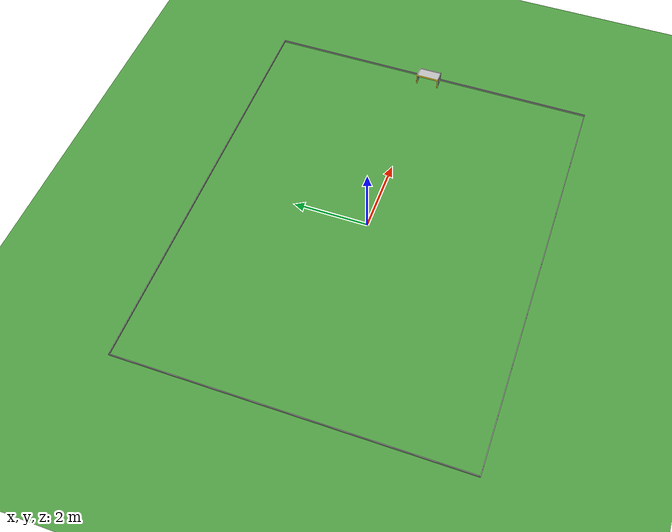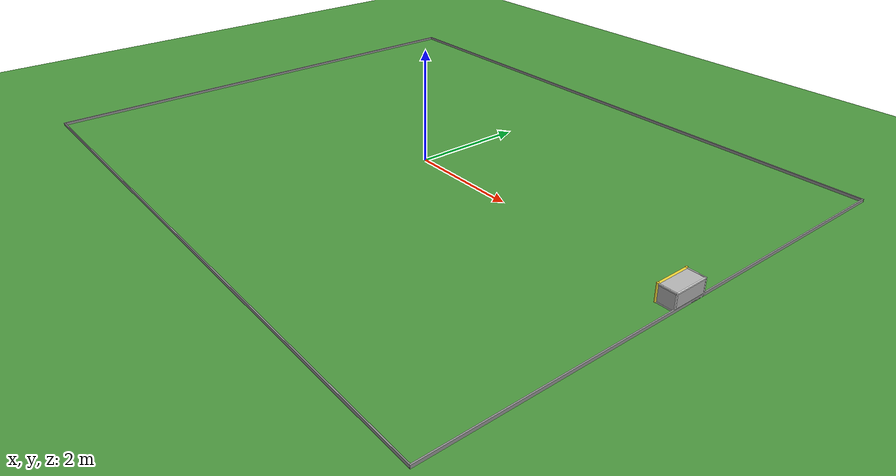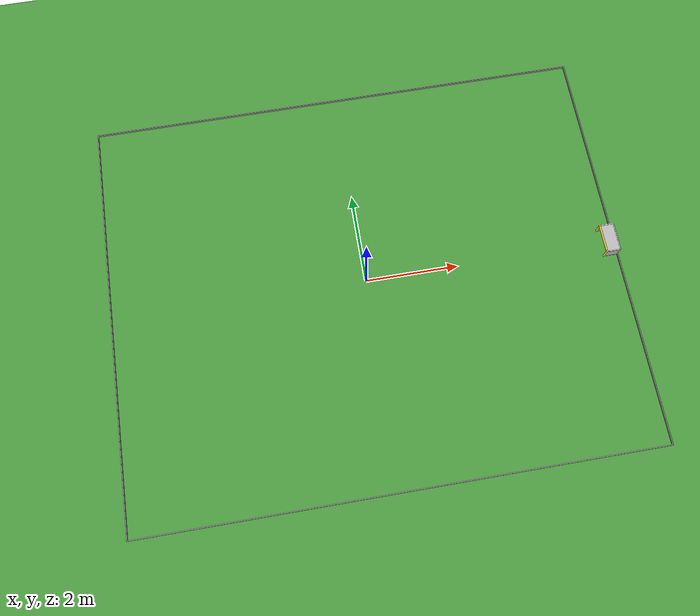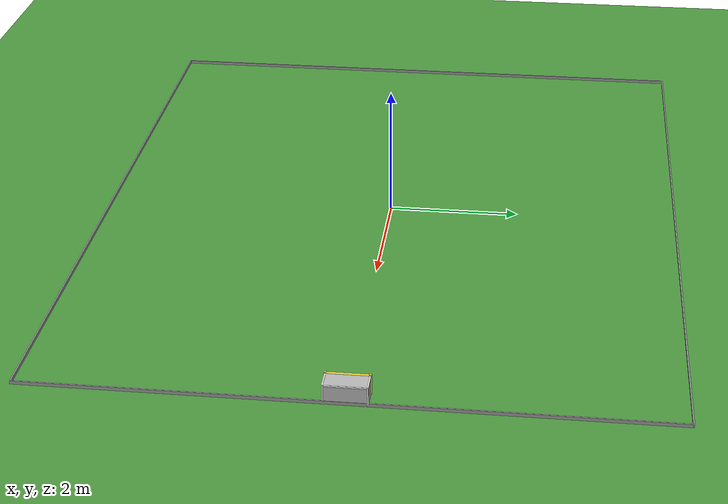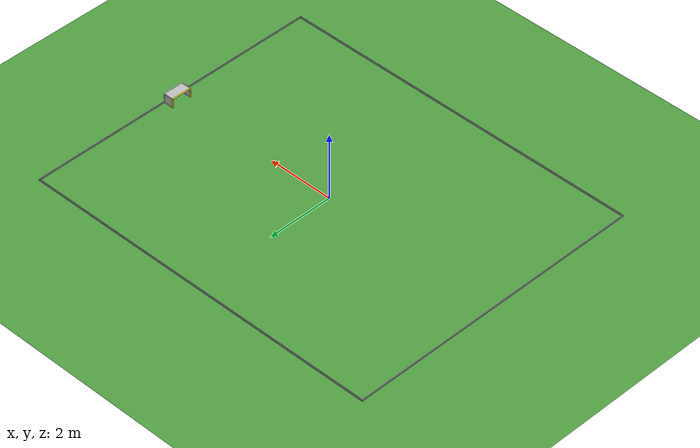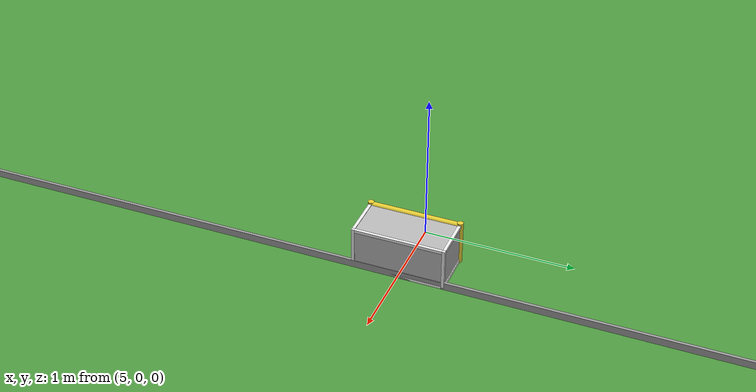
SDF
<?xml version="1.0"?>
<sdf version='1.6'>
  <world name='vsss_environment'>

    <!-- Fonte de luz -->
    <light name='sun' type='directional'>
      <cast_shadows>0</cast_shadows>
      <pose frame=''>0 0 10 0 -0 0</pose>
      <diffuse>0.8 0.8 0.8 1</diffuse>
      <specular>0.2 0.2 0.2 1</specular>

      <attenuation>
        <range>1000</range>
        <constant>0.9</constant>
        <linear>0.01</linear>
        <quadratic>0.001</quadratic>
      </attenuation>

      <direction>-0.5 0.1 -0.9</direction>
    </light>

    <!-- Interface -->
    <gui fullscreen='0'>
      <camera name='user_camera'>
        <pose frame=''>0 -0.2 2.5 0 1.50 1.57</pose>
        <view_controller>orbit</view_controller>
        <projection_type>perspective</projection_type>
      </camera>
    </gui>

    <!-- Terreno plano -->
    <model name='ground_plane'>
      <static>1</static>
      <link name='link'>
        <collision name='collision'>
          <geometry>
            <plane>
              <normal>0 0 1</normal>
              <size>11 9</size>
            </plane>
          </geometry>
          <surface>
            <friction>
              <ode>
                <mu>0.5</mu>
                <mu2>0.5</mu2>
              </ode>
              <torsional>
                <ode/>
              </torsional>
            </friction>
            <contact>
              <ode/>
            </contact>
            <bounce/>
          </surface>
          <max_contacts>10</max_contacts>
        </collision>
        <visual name='visual'>
          <cast_shadows>0</cast_shadows>
          <geometry>
            <plane>
              <normal>0 0 1</normal>
              <size>11 9</size>
            </plane>
          </geometry>
          <material>
            <script>
              <uri>model://robocup_3Dsim_field/materials/scripts/</uri>
              <uri>model://robocup_3Dsim_field/materials/textures/</uri>
              <name>RoboCup/Grass</name>
            </script>
          </material>
        </visual>
        <self_collide>0</self_collide>
        <enable_wind>0</enable_wind>
        <kinematic>0</kinematic>
      </link>
    </model>

    <gravity>0 0 -9.8</gravity>
    <magnetic_field>6e-06 2.3e-05 -4.2e-05</magnetic_field>
    <atmosphere type='adiabatic'/>

    <physics name='default_physics' default='0' type='ode'>
      <max_step_size>0.001</max_step_size>
      <real_time_factor>1</real_time_factor>
      <real_time_update_rate>1000</real_time_update_rate>
    </physics>

    <scene>
      <ambient>0.4 0.4 0.4 1</ambient>
      <background>0.7 0.7 0.7 1</background>
      <shadows>0</shadows>
    </scene>

    <spherical_coordinates>
      <surface_model>EARTH_WGS84</surface_model>
      <latitude_deg>0</latitude_deg>
      <longitude_deg>0</longitude_deg>
      <elevation>0</elevation>
      <heading_deg>0</heading_deg>
    </spherical_coordinates>
    <model name='robocup_3d_goal'>
      <static>1</static>
      <link name='left_post'>
        <pose frame=''>0 0.3 0.15 0 -0 0</pose>
        <collision name='collision'>
          <geometry>
            <cylinder>
              <radius>0.02</radius>
              <length>0.3</length>
            </cylinder>
          </geometry>
          <max_contacts>10</max_contacts>
          <surface>
            <contact>
              <ode/>
            </contact>
            <bounce/>
            <friction>
              <torsional>
                <ode/>
              </torsional>
              <ode/>
            </friction>
          </surface>
        </collision>
        <visual name='visual'>
          <geometry>
            <cylinder>
              <radius>0.02</radius>
              <length>0.3</length>
            </cylinder>
          </geometry>
          <material>
            <script>
              <uri>file://media/materials/scripts/gazebo.material</uri>
              <name>Gazebo/ZincYellow</name>
            </script>
          </material>
        </visual>
        <self_collide>0</self_collide>
        <kinematic>0</kinematic>
        <gravity>1</gravity>
      </link>
      <link name='left_support_horiz_lower'>
        <pose frame=''>0.15 0.3 0.01 0 -0 0</pose>
        <collision name='collision'>
          <geometry>
            <box>
              <size>0.3 0.02 0.02</size>
            </box>
          </geometry>
          <max_contacts>10</max_contacts>
          <surface>
            <contact>
              <ode/>
            </contact>
            <bounce/>
            <friction>
              <torsional>
                <ode/>
              </torsional>
              <ode/>
            </friction>
          </surface>
        </collision>
        <visual name='visual'>
          <geometry>
            <box>
              <size>0.3 0.02 0.02</size>
            </box>
          </geometry>
          <material>
            <script>
              <uri>file://media/materials/scripts/gazebo.material</uri>
              <name>Gazebo/White</name>
            </script>
          </material>
        </visual>
        <self_collide>0</self_collide>
        <kinematic>0</kinematic>
        <gravity>1</gravity>
      </link>
      <link name='left_support_horiz_upper'>
        <pose frame=''>0.15 0.3 0.28 0 -0 0</pose>
        <collision name='collision'>
          <geometry>
            <box>
              <size>0.3 0.02 0.02</size>
            </box>
          </geometry>
          <max_contacts>10</max_contacts>
          <surface>
            <contact>
              <ode/>
            </contact>
            <bounce/>
            <friction>
              <torsional>
                <ode/>
              </torsional>
              <ode/>
            </friction>
          </surface>
        </collision>
        <visual name='visual'>
          <geometry>
            <box>
              <size>0.3 0.02 0.02</size>
            </box>
          </geometry>
          <material>
            <script>
              <uri>file://media/materials/scripts/gazebo.material</uri>
              <name>Gazebo/White</name>
            </script>
          </material>
        </visual>
        <self_collide>0</self_collide>
        <kinematic>0</kinematic>
        <gravity>1</gravity>
      </link>
      <link name='left_support_vertical'>
        <pose frame=''>0.3 0.3 0.15 3.14159 1.57079 3.14159</pose>
        <collision name='collision'>
          <geometry>
            <box>
              <size>0.28 0.02 0.02</size>
            </box>
          </geometry>
          <max_contacts>10</max_contacts>
          <surface>
            <contact>
              <ode/>
            </contact>
            <bounce/>
            <friction>
              <torsional>
                <ode/>
              </torsional>
              <ode/>
            </friction>
          </surface>
        </collision>
        <visual name='visual'>
          <geometry>
            <box>
              <size>0.28 0.02 0.02</size>
            </box>
          </geometry>
          <material>
            <script>
              <uri>file://media/materials/scripts/gazebo.material</uri>
              <name>Gazebo/White</name>
            </script>
          </material>
        </visual>
        <self_collide>0</self_collide>
        <kinematic>0</kinematic>
        <gravity>1</gravity>
      </link>
      <link name='right_support_horiz_lower'>
        <pose frame=''>0.15 -0.3 0.01 0 -0 0</pose>
        <collision name='collision'>
          <geometry>
            <box>
              <size>0.3 0.02 0.02</size>
            </box>
          </geometry>
          <max_contacts>10</max_contacts>
          <surface>
            <contact>
              <ode/>
            </contact>
            <bounce/>
            <friction>
              <torsional>
                <ode/>
              </torsional>
              <ode/>
            </friction>
          </surface>
        </collision>
        <visual name='visual'>
          <geometry>
            <box>
              <size>0.3 0.02 0.02</size>
            </box>
          </geometry>
          <material>
            <script>
              <uri>file://media/materials/scripts/gazebo.material</uri>
              <name>Gazebo/White</name>
            </script>
          </material>
        </visual>
        <self_collide>0</self_collide>
        <kinematic>0</kinematic>
        <gravity>1</gravity>
      </link>
      <link name='right_support_horiz_upper'>
        <pose frame=''>0.15 -0.3 0.28 0 -0 0</pose>
        <collision name='collision'>
          <geometry>
            <box>
              <size>0.3 0.02 0.02</size>
            </box>
          </geometry>
          <max_contacts>10</max_contacts>
          <surface>
            <contact>
              <ode/>
            </contact>
            <bounce/>
            <friction>
              <torsional>
                <ode/>
              </torsional>
              <ode/>
            </friction>
          </surface>
        </collision>
        <visual name='visual'>
          <geometry>
            <box>
              <size>0.3 0.02 0.02</size>
            </box>
          </geometry>
          <material>
            <script>
              <uri>file://media/materials/scripts/gazebo.material</uri>
              <name>Gazebo/White</name>
            </script>
          </material>
        </visual>
        <self_collide>0</self_collide>
        <kinematic>0</kinematic>
        <gravity>1</gravity>
      </link>
      <link name='right_support_vertical'>
        <pose frame=''>0.3 -0.3 0.15 3.14159 1.57079 3.14159</pose>
        <collision name='collision'>
          <geometry>
            <box>
              <size>0.28 0.02 0.02</size>
            </box>
          </geometry>
          <max_contacts>10</max_contacts>
          <surface>
            <contact>
              <ode/>
            </contact>
            <bounce/>
            <friction>
              <torsional>
                <ode/>
              </torsional>
              <ode/>
            </friction>
          </surface>
        </collision>
        <visual name='visual'>
          <geometry>
            <box>
              <size>0.28 0.02 0.02</size>
            </box>
          </geometry>
          <material>
            <script>
              <uri>file://media/materials/scripts/gazebo.material</uri>
              <name>Gazebo/White</name>
            </script>
          </material>
        </visual>
        <self_collide>0</self_collide>
        <kinematic>0</kinematic>
        <gravity>1</gravity>
      </link>
      <link name='center_support_horiz_lower'>
        <pose frame=''>0.3 0 0.01 3.14159 1.57079 3.14159</pose>
        <collision name='collision'>
          <geometry>
            <box>
              <size>0.02 0.58 0.02</size>
            </box>
          </geometry>
          <max_contacts>10</max_contacts>
          <surface>
            <contact>
              <ode/>
            </contact>
            <bounce/>
            <friction>
              <torsional>
                <ode/>
              </torsional>
              <ode/>
            </friction>
          </surface>
        </collision>
        <visual name='visual'>
          <geometry>
            <box>
              <size>0.02 0.58 0.02</size>
            </box>
          </geometry>
          <material>
            <script>
              <uri>file://media/materials/scripts/gazebo.material</uri>
              <name>Gazebo/White</name>
            </script>
          </material>
        </visual>
        <self_collide>0</self_collide>
        <kinematic>0</kinematic>
        <gravity>1</gravity>
      </link>
      <link name='center_support_horiz_upper'>
        <pose frame=''>0.3 0 0.28 3.14159 1.57079 3.14159</pose>
        <collision name='collision'>
          <geometry>
            <box>
              <size>0.02 0.58 0.02</size>
            </box>
          </geometry>
          <max_contacts>10</max_contacts>
          <surface>
            <contact>
              <ode/>
            </contact>
            <bounce/>
            <friction>
              <torsional>
                <ode/>
              </torsional>
              <ode/>
            </friction>
          </surface>
        </collision>
        <visual name='visual'>
          <geometry>
            <box>
              <size>0.02 0.58 0.02</size>
            </box>
          </geometry>
          <material>
            <script>
              <uri>file://media/materials/scripts/gazebo.material</uri>
              <name>Gazebo/White</name>
            </script>
          </material>
        </visual>
        <self_collide>0</self_collide>
        <kinematic>0</kinematic>
        <gravity>1</gravity>
      </link>
      <link name='right_post'>
        <pose frame=''>0 -0.3 0.15 0 -0 0</pose>
        <collision name='collision'>
          <geometry>
            <cylinder>
              <radius>0.02</radius>
              <length>0.3</length>
            </cylinder>
          </geometry>
          <max_contacts>10</max_contacts>
          <surface>
            <contact>
              <ode/>
            </contact>
            <bounce/>
            <friction>
              <torsional>
                <ode/>
              </torsional>
              <ode/>
            </friction>
          </surface>
        </collision>
        <visual name='visual'>
          <geometry>
            <cylinder>
              <radius>0.02</radius>
              <length>0.3</length>
            </cylinder>
          </geometry>
          <material>
            <script>
              <uri>file://media/materials/scripts/gazebo.material</uri>
              <name>Gazebo/ZincYellow</name>
            </script>
          </material>
        </visual>
        <self_collide>0</self_collide>
        <kinematic>0</kinematic>
        <gravity>1</gravity>
      </link>
      <link name='crossbar'>
        <pose frame=''>0 0 0.28 1.57 1.57 0</pose>
        <collision name='collision'>
          <geometry>
            <cylinder>
              <radius>0.02</radius>
              <length>0.6</length>
            </cylinder>
          </geometry>
          <max_contacts>10</max_contacts>
          <surface>
            <contact>
              <ode/>
            </contact>
            <bounce/>
            <friction>
              <torsional>
                <ode/>
              </torsional>
              <ode/>
            </friction>
          </surface>
        </collision>
        <visual name='visual'>
          <geometry>
            <cylinder>
              <radius>0.02</radius>
              <length>0.6</length>
            </cylinder>
          </geometry>
          <material>
            <script>
              <uri>file://media/materials/scripts/gazebo.material</uri>
              <name>Gazebo/ZincYellow</name>
            </script>
          </material>
        </visual>
        <self_collide>0</self_collide>
        <kinematic>0</kinematic>
        <gravity>1</gravity>
      </link>
      <link name='center_net'>
        <pose frame=''>0.3 0 0.14 0 -0 0</pose>
        <collision name='collision'>
          <geometry>
            <box>
              <size>0.01 0.6 0.28</size>
            </box>
          </geometry>
          <max_contacts>10</max_contacts>
          <surface>
            <contact>
              <ode/>
            </contact>
            <bounce/>
            <friction>
              <torsional>
                <ode/>
              </torsional>
              <ode/>
            </friction>
          </surface>
        </collision>
        <visual name='visual'>
          <geometry>
            <box>
              <size>0.01 0.6 0.28</size>
            </box>
          </geometry>
          <material>
            <script>
              <uri>model://robocup09_spl_field/materials/scripts/</uri>
              <uri>model://robocup09_spl_field/materials/textures/</uri>
              <name>RoboCup/Net</name>
            </script>
          </material>
        </visual>
        <self_collide>0</self_collide>
        <kinematic>0</kinematic>
        <gravity>1</gravity>
      </link>
      <link name='left_net'>
        <pose frame=''>0.15 0.3 0.14 0 -0 0</pose>
        <collision name='collision'>
          <geometry>
            <box>
              <size>0.3 0.01 0.28</size>
            </box>
          </geometry>
          <max_contacts>10</max_contacts>
          <surface>
            <contact>
              <ode/>
            </contact>
            <bounce/>
            <friction>
              <torsional>
                <ode/>
              </torsional>
              <ode/>
            </friction>
          </surface>
        </collision>
        <visual name='visual'>
          <geometry>
            <box>
              <size>0.3 0.01 0.28</size>
            </box>
          </geometry>
          <material>
            <script>
              <uri>model://robocup09_spl_field/materials/scripts/</uri>
              <uri>model://robocup09_spl_field/materials/textures/</uri>
              <name>RoboCup/Net</name>
            </script>
          </material>
        </visual>
        <self_collide>0</self_collide>
        <kinematic>0</kinematic>
        <gravity>1</gravity>
      </link>
      <link name='right_net'>
        <pose frame=''>0.15 -0.3 0.14 0 -0 0</pose>
        <collision name='collision'>
          <geometry>
            <box>
              <size>0.3 0.01 0.28</size>
            </box>
          </geometry>
          <max_contacts>10</max_contacts>
          <surface>
            <contact>
              <ode/>
            </contact>
            <bounce/>
            <friction>
              <torsional>
                <ode/>
              </torsional>
              <ode/>
            </friction>
          </surface>
        </collision>
        <visual name='visual'>
          <geometry>
            <box>
              <size>0.3 0.01 0.28</size>
            </box>
          </geometry>
          <material>
            <script>
              <uri>model://robocup09_spl_field/materials/scripts/</uri>
              <uri>model://robocup09_spl_field/materials/textures/</uri>
              <name>RoboCup/Net</name>
            </script>
          </material>
        </visual>
        <self_collide>0</self_collide>
        <kinematic>0</kinematic>
        <gravity>1</gravity>
      </link>
      <link name='upper_net'>
        <pose frame=''>0.15 0 0.28 0 -0 0</pose>
        <collision name='collision'>
          <geometry>
            <box>
              <size>0.3 0.6 0.01</size>
            </box>
          </geometry>
          <max_contacts>10</max_contacts>
          <surface>
            <contact>
              <ode/>
            </contact>
            <bounce/>
            <friction>
              <torsional>
                <ode/>
              </torsional>
              <ode/>
            </friction>
          </surface>
        </collision>
        <visual name='visual'>
          <geometry>
            <box>
              <size>0.3 0.6 0.01</size>
            </box>
          </geometry>
          <material>
            <script>
              <uri>model://robocup09_spl_field/materials/scripts/</uri>
              <uri>model://robocup09_spl_field/materials/textures/</uri>
              <name>RoboCup/Net</name>
            </script>
          </material>
        </visual>
        <self_collide>0</self_collide>
        <kinematic>0</kinematic>
        <gravity>1</gravity>
      </link>
      <pose frame=''>5.2 0 0 0 -0 0</pose>
    </model>

    <!-- IEEE Very Small Size Soccer Field -->
    <include>
        <pose>0 0 0 0 0 0</pose>
        <uri>model://vsss_field_119</uri>
        <name>field_walls</name>
        <static>true</static>
    </include>

    <!-- IEEE Very Small Size Soccer Ball -->
    <include>
        <pose>0 1 0 0 0 0</pose>
        <uri>model://vsss_ball</uri>
        <name>ball</name>
        <static>false</static>
    </include>

  </world>
</sdf>

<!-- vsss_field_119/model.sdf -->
<sdf version='1.6'>
  <model name='vsss_field_11*9'>
    <pose frame=''>0 0 0 0 -0 0</pose>
    <link name='Wall_0'>
      <collision name='Wall_0_Collision'>
        <geometry>
          <box>
            <size>11.02 0.02 0.05</size>
          </box>
        </geometry>
        <pose frame=''>0 0 0.025 0 -0 0</pose>
      </collision>
      <visual name='Wall_0_Visual'>
        <pose frame=''>0 0 0.025 0 -0 0</pose>
        <geometry>
          <box>
            <size>11.02 0.02 0.05</size>
          </box>
        </geometry>
        <material>
          <script>
            <uri>file://media/materials/scripts/gazebo.material</uri>
            <name>Gazebo/Grey</name>
          </script>
          <ambient>1 1 1 1</ambient>
        </material>
        <meta>
          <layer>0</layer>
        </meta>
      </visual>
      <pose frame=''>0 -4.5 0 0 -0 0</pose>
    </link>
    <link name='Wall_1'>
      <collision name='Wall_1_Collision'>
        <geometry>
          <box>
            <size>9.02 0.02 0.05</size>
          </box>
        </geometry>
        <pose frame=''>0 0 0.025 0 -0 0</pose>
      </collision>
      <visual name='Wall_1_Visual'>
        <pose frame=''>0 0 0.025 0 -0 0</pose>
        <geometry>
          <box>
            <size>9.02 0.02 0.05</size>
          </box>
        </geometry>
        <material>
          <script>
            <uri>file://media/materials/scripts/gazebo.material</uri>
            <name>Gazebo/Grey</name>
          </script>
          <ambient>1 1 1 1</ambient>
        </material>
        <meta>
          <layer>0</layer>
        </meta>
      </visual>
      <pose frame=''>5.5 -0 0 0 -0 1.5708</pose>
    </link>
    <link name='Wall_2'>
      <collision name='Wall_2_Collision'>
        <geometry>
          <box>
            <size>11.02 0.02 0.05</size>
          </box>
        </geometry>
        <pose frame=''>0 0 0.025 0 -0 0</pose>
      </collision>
      <visual name='Wall_2_Visual'>
        <pose frame=''>0 0 0.025 0 -0 0</pose>
        <geometry>
          <box>
            <size>11.02 0.02 0.05</size>
          </box>
        </geometry>
        <material>
          <script>
            <uri>file://media/materials/scripts/gazebo.material</uri>
            <name>Gazebo/Grey</name>
          </script>
          <ambient>1 1 1 1</ambient>
        </material>
        <meta>
          <layer>0</layer>
        </meta>
      </visual>
      <pose frame=''>0 4.5 0 0 -0 3.14159</pose>
    </link>
    <link name='Wall_3'>
      <collision name='Wall_3_Collision'>
        <geometry>
          <box>
            <size>9.02 0.02 0.05</size>
          </box>
        </geometry>
        <pose frame=''>0 0 0.025 0 -0 0</pose>
      </collision>
      <visual name='Wall_3_Visual'>
        <pose frame=''>0 0 0.025 0 -0 0</pose>
        <geometry>
          <box>
            <size>9.02 0.02 0.05</size>
          </box>
        </geometry>
        <material>
          <script>
            <uri>file://media/materials/scripts/gazebo.material</uri>
            <name>Gazebo/Grey</name>
          </script>
          <ambient>1 1 1 1</ambient>
        </material>
        <meta>
          <layer>0</layer>
        </meta>
      </visual>
      <pose frame=''>-5.5 0 0 0 -0 -1.5708</pose>
    </link>
    <static>1</static>
  </model>
</sdf>

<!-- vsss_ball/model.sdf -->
<sdf version='1.6'>

  <model name='vsss_ball'>
    <link name='ball'>

      <pose frame=''>0 0 0 0 0 0</pose>
      <self_collide>0</self_collide>
      <enable_wind>0</enable_wind>
      <kinematic>0</kinematic>
      <gravity>1</gravity>

      <inertial>
        <mass>0.04593</mass>
        <pose frame=''>0 0 0 0 0 0</pose>
        <inertia>
          <ixx>0.000008363</ixx>
          <iyy>0.000008363</iyy>
          <izz>0.000008363</izz>
          <ixy>0</ixy>
          <ixz>0</ixz>
          <iyz>0</iyz>
        </inertia>
      </inertial>

      <visual name='visual'>
        <pose frame=''>0 0 0 0 0 0</pose>
        <geometry>
          <sphere>
            <radius>0.021335</radius>
          </sphere>
        </geometry>

        <material>
          <script>
            <uri>file://media/materials/scripts/gazebo.material</uri>
            <name>Gazebo/RedBright</name>
          </script>
        </material>
        <transparency>0</transparency>
        <cast_shadows>1</cast_shadows>
      </visual>

      <collision name='collision'>
        <laser_retro>0</laser_retro>
        <max_contacts>10</max_contacts>
        <pose frame=''>0 0 0 0 0 0</pose>

        <geometry>
          <sphere>
            <radius>0.021335</radius>
          </sphere>
        </geometry>
        <surface>

          <friction>
            <ode>
              <mu>0.5</mu>
              <mu2>0.5</mu2>
              <fdir1>0 0 0</fdir1>
              <slip1>0</slip1>
              <slip2>0</slip2>
            </ode>
            <torsional>
              <coefficient>1</coefficient>
              <patch_radius>0.05</patch_radius>
              <surface_radius>0</surface_radius>
              <use_patch_radius>1</use_patch_radius>
              <ode>
                <slip>0</slip>
              </ode>
            </torsional>
          </friction>

          <bounce>
            <restitution_coefficient>0.05</restitution_coefficient>
            <threshold>10</threshold>
          </bounce>

          <contact>
            <collide_without_contact>0</collide_without_contact>
            <collide_without_contact_bitmask>1</collide_without_contact_bitmask>
            <collide_bitmask>1</collide_bitmask>
            <ode>
              <soft_cfm>0</soft_cfm>
              <soft_erp>0.2</soft_erp>
              <kp>1e+13</kp>
              <kd>1</kd>
              <max_vel>0.01</max_vel>
              <min_depth>0</min_depth>
            </ode>
            <bullet>
              <split_impulse>1</split_impulse>
              <split_impulse_penetration_threshold>-0.01</split_impulse_penetration_threshold>
              <soft_cfm>0</soft_cfm>
              <soft_erp>0.2</soft_erp>
              <kp>1e+13</kp>
              <kd>1</kd>
            </bullet>
          </contact>

        </surface>
      </collision>
    </link>
    <static>0</static>
    <allow_auto_disable>1</allow_auto_disable>

  </model>
</sdf>
